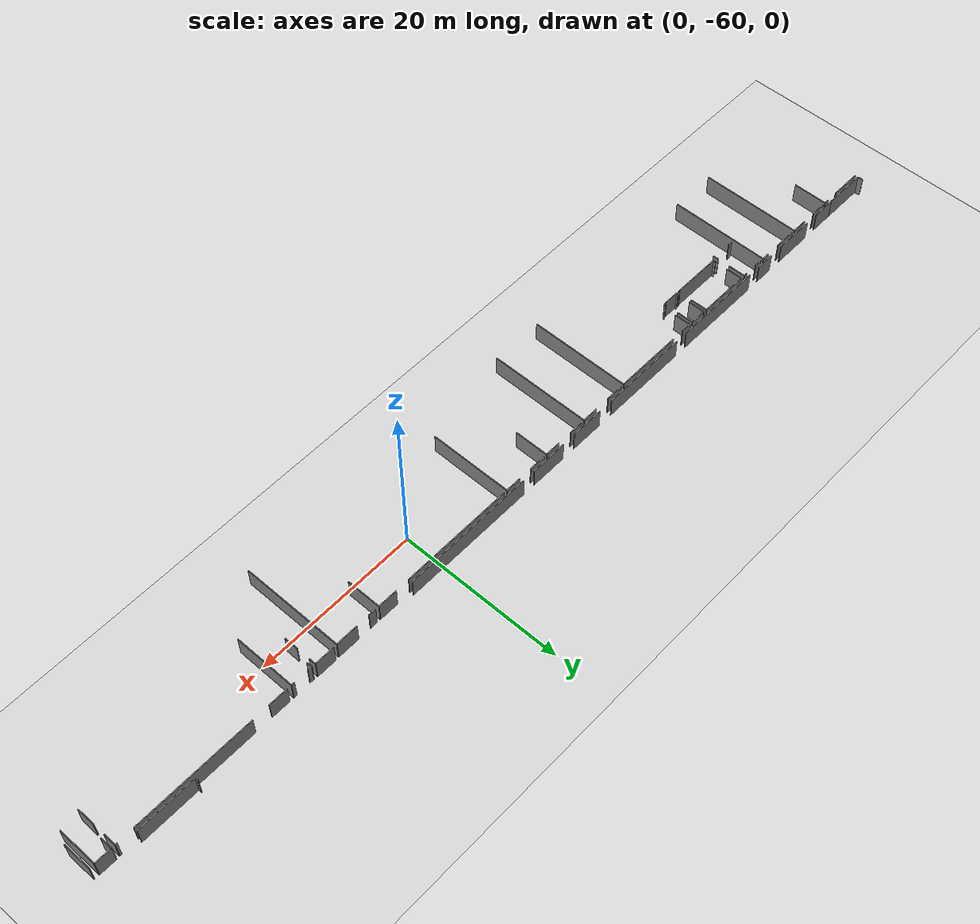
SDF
<sdf version="1.6">
 <world name="default">
  <model name="ground_plane">
   <static>1</static>
   <link name="link">
    <collision name="collision">
     <geometry><plane><normal>0 0 1</normal><size>100 100</size></plane></geometry>
     <surface><friction><ode><mu>100</mu><mu2>50</mu2></ode></friction></surface>
    </collision>
    <visual name="visual">
     <cast_shadows>0</cast_shadows>
     <geometry><plane><normal>0 0 1</normal><size>100 100</size></plane></geometry>
     <material>
      <script><uri>file://media/materials/scripts/gazebo.material</uri><name>Gazebo/Grey</name></script>
     </material>
    </visual>
   </link>
  </model>
  <model name="50036893">
   <static>1</static>
   <link name="Wall_6">
    <collision name="Wall_6_Collision">
     <geometry><box><size>3.85703506914 0.1 2.5</size></box></geometry>
     <pose>1.92851753457 0 1.25 0 0 0</pose>
    </collision>
    <visual name="Wall_6_Visual">
     <pose>1.92851753457 0 1.25 0 0 0</pose>
     <geometry><box><size>3.85703506914 0.1 2.5</size></box></geometry>
     <material>
      <script><uri>file://media/materials/scripts/gazebo.material</uri><name>Gazebo/Grey</name></script>
      <ambient>1 1 1 1</ambient>
     </material>
    </visual>
    <pose>4.74013581288 -123.289689761 0 0 0 0.0</pose>
   </link>
   <link name="Wall_7">
    <collision name="Wall_7_Collision">
     <geometry><box><size>0.567345308369 0.1 2.5</size></box></geometry>
     <pose>0.283672654184 0 1.25 0 0 0</pose>
    </collision>
    <visual name="Wall_7_Visual">
     <pose>0.283672654184 0 1.25 0 0 0</pose>
     <geometry><box><size>0.567345308369 0.1 2.5</size></box></geometry>
     <material>
      <script><uri>file://media/materials/scripts/gazebo.material</uri><name>Gazebo/Grey</name></script>
      <ambient>1 1 1 1</ambient>
     </material>
    </visual>
    <pose>10.0057698282 -123.289689761 0 0 0 0.0</pose>
   </link>
   <link name="Wall_8">
    <collision name="Wall_8_Collision">
     <geometry><box><size>4.20931161511 0.1 2.5</size></box></geometry>
     <pose>2.10465580755 0 1.25 0 0 0</pose>
    </collision>
    <visual name="Wall_8_Visual">
     <pose>2.10465580755 0 1.25 0 0 0</pose>
     <geometry><box><size>4.20931161511 0.1 2.5</size></box></geometry>
     <material>
      <script><uri>file://media/materials/scripts/gazebo.material</uri><name>Gazebo/Grey</name></script>
      <ambient>1 1 1 1</ambient>
     </material>
    </visual>
    <pose>10.5731151366 -123.289689761 0 0 0 -1.57079632679</pose>
   </link>
   <link name="Wall_15">
    <collision name="Wall_15_Collision">
     <geometry><box><size>1.75960739806 0.1 2.5</size></box></geometry>
     <pose>0.879803699031 0 1.25 0 0 0</pose>
    </collision>
    <visual name="Wall_15_Visual">
     <pose>0.879803699031 0 1.25 0 0 0</pose>
     <geometry><box><size>1.75960739806 0.1 2.5</size></box></geometry>
     <material>
      <script><uri>file://media/materials/scripts/gazebo.material</uri><name>Gazebo/Grey</name></script>
      <ambient>1 1 1 1</ambient>
     </material>
    </visual>
    <pose>11.0207523602 -123.288421667 0 0 0 0.0</pose>
   </link>
   <link name="Wall_16">
    <collision name="Wall_16_Collision">
     <geometry><box><size>1.86384473456 0.1 2.5</size></box></geometry>
     <pose>0.931922367278 0 1.25 0 0 0</pose>
    </collision>
    <visual name="Wall_16_Visual">
     <pose>0.931922367278 0 1.25 0 0 0</pose>
     <geometry><box><size>1.86384473456 0.1 2.5</size></box></geometry>
     <material>
      <script><uri>file://media/materials/scripts/gazebo.material</uri><name>Gazebo/Grey</name></script>
      <ambient>1 1 1 1</ambient>
     </material>
    </visual>
    <pose>14.4798594952 -123.288421667 0 0 0 0.0</pose>
   </link>
   <link name="Wall_17">
    <collision name="Wall_17_Collision">
     <geometry><box><size>12.3864897253 0.1 2.5</size></box></geometry>
     <pose>6.19324486263 0 1.25 0 0 0</pose>
    </collision>
    <visual name="Wall_17_Visual">
     <pose>6.19324486263 0 1.25 0 0 0</pose>
     <geometry><box><size>12.3864897253 0.1 2.5</size></box></geometry>
     <material>
      <script><uri>file://media/materials/scripts/gazebo.material</uri><name>Gazebo/Grey</name></script>
      <ambient>1 1 1 1</ambient>
     </material>
    </visual>
    <pose>16.3437042297 -123.288421667 0 0 0 -1.57079632679</pose>
   </link>
   <link name="Wall_20">
    <collision name="Wall_20_Collision">
     <geometry><box><size>2.57321658413 0.1 2.5</size></box></geometry>
     <pose>1.28660829207 0 1.25 0 0 0</pose>
    </collision>
    <visual name="Wall_20_Visual">
     <pose>1.28660829207 0 1.25 0 0 0</pose>
     <geometry><box><size>2.57321658413 0.1 2.5</size></box></geometry>
     <material>
      <script><uri>file://media/materials/scripts/gazebo.material</uri><name>Gazebo/Grey</name></script>
      <ambient>1 1 1 1</ambient>
     </material>
    </visual>
    <pose>16.7806894628 -123.314798024 0 0 0 0.0</pose>
   </link>
   <link name="Wall_21">
    <collision name="Wall_21_Collision">
     <geometry><box><size>0.920636329628 0.1 2.5</size></box></geometry>
     <pose>0.460318164814 0 1.25 0 0 0</pose>
    </collision>
    <visual name="Wall_21_Visual">
     <pose>0.460318164814 0 1.25 0 0 0</pose>
     <geometry><box><size>0.920636329628 0.1 2.5</size></box></geometry>
     <material>
      <script><uri>file://media/materials/scripts/gazebo.material</uri><name>Gazebo/Grey</name></script>
      <ambient>1 1 1 1</ambient>
     </material>
    </visual>
    <pose>21.1348174261 -123.314798024 0 0 0 0.0</pose>
   </link>
   <link name="Wall_22">
    <collision name="Wall_22_Collision">
     <geometry><box><size>12.3400774806 0.1 2.5</size></box></geometry>
     <pose>6.17003874028 0 1.25 0 0 0</pose>
    </collision>
    <visual name="Wall_22_Visual">
     <pose>6.17003874028 0 1.25 0 0 0</pose>
     <geometry><box><size>12.3400774806 0.1 2.5</size></box></geometry>
     <material>
      <script><uri>file://media/materials/scripts/gazebo.material</uri><name>Gazebo/Grey</name></script>
      <ambient>1 1 1 1</ambient>
     </material>
    </visual>
    <pose>22.0554537558 -123.314798024 0 0 0 -1.57079632679</pose>
   </link>
   <link name="Wall_27">
    <collision name="Wall_27_Collision">
     <geometry><box><size>0.550352847188 0.1 2.5</size></box></geometry>
     <pose>0.275176423594 0 1.25 0 0 0</pose>
    </collision>
    <visual name="Wall_27_Visual">
     <pose>0.275176423594 0 1.25 0 0 0</pose>
     <geometry><box><size>0.550352847188 0.1 2.5</size></box></geometry>
     <material>
      <script><uri>file://media/materials/scripts/gazebo.material</uri><name>Gazebo/Grey</name></script>
      <ambient>1 1 1 1</ambient>
     </material>
    </visual>
    <pose>23.0090605325 -127.451574656 0 0 0 3.14159265359</pose>
   </link>
   <link name="Wall_29">
    <collision name="Wall_29_Collision">
     <geometry><box><size>0.935853459044 0.1 2.5</size></box></geometry>
     <pose>0.467926729522 0 1.25 0 0 0</pose>
    </collision>
    <visual name="Wall_29_Visual">
     <pose>0.467926729522 0 1.25 0 0 0</pose>
     <geometry><box><size>0.935853459044 0.1 2.5</size></box></geometry>
     <material>
      <script><uri>file://media/materials/scripts/gazebo.material</uri><name>Gazebo/Grey</name></script>
      <ambient>1 1 1 1</ambient>
     </material>
    </visual>
    <pose>22.4587076853 -123.343456951 0 0 0 0.0</pose>
   </link>
   <link name="Wall_30">
    <collision name="Wall_30_Collision">
     <geometry><box><size>0.471731011876 0.1 2.5</size></box></geometry>
     <pose>0.235865505938 0 1.25 0 0 0</pose>
    </collision>
    <visual name="Wall_30_Visual">
     <pose>0.235865505938 0 1.25 0 0 0</pose>
     <geometry><box><size>0.471731011876 0.1 2.5</size></box></geometry>
     <material>
      <script><uri>file://media/materials/scripts/gazebo.material</uri><name>Gazebo/Grey</name></script>
      <ambient>1 1 1 1</ambient>
     </material>
    </visual>
    <pose>24.9847511682 -123.343456951 0 0 0 0.0</pose>
   </link>
   <link name="Wall_31">
    <collision name="Wall_31_Collision">
     <geometry><box><size>2.09235529461 0.1 2.5</size></box></geometry>
     <pose>1.0461776473 0 1.25 0 0 0</pose>
    </collision>
    <visual name="Wall_31_Visual">
     <pose>1.0461776473 0 1.25 0 0 0</pose>
     <geometry><box><size>2.09235529461 0.1 2.5</size></box></geometry>
     <material>
      <script><uri>file://media/materials/scripts/gazebo.material</uri><name>Gazebo/Grey</name></script>
      <ambient>1 1 1 1</ambient>
     </material>
    </visual>
    <pose>25.4564821801 -123.343456951 0 0 0 -1.57079632679</pose>
   </link>
   <link name="Wall_32">
    <collision name="Wall_32_Collision">
     <geometry><box><size>0.701763284871 0.1 2.5</size></box></geometry>
     <pose>0.350881642436 0 1.25 0 0 0</pose>
    </collision>
    <visual name="Wall_32_Visual">
     <pose>0.350881642436 0 1.25 0 0 0</pose>
     <geometry><box><size>0.701763284871 0.1 2.5</size></box></geometry>
     <material>
      <script><uri>file://media/materials/scripts/gazebo.material</uri><name>Gazebo/Grey</name></script>
      <ambient>1 1 1 1</ambient>
     </material>
    </visual>
    <pose>25.4564821801 -126.950677479 0 0 0 -1.57079632679</pose>
   </link>
   <link name="Wall_36">
    <collision name="Wall_36_Collision">
     <geometry><box><size>6.15025647204 0.1 2.5</size></box></geometry>
     <pose>3.07512823602 0 1.25 0 0 0</pose>
    </collision>
    <visual name="Wall_36_Visual">
     <pose>3.07512823602 0 1.25 0 0 0</pose>
     <geometry><box><size>6.15025647204 0.1 2.5</size></box></geometry>
     <material>
      <script><uri>file://media/materials/scripts/gazebo.material</uri><name>Gazebo/Grey</name></script>
      <ambient>1 1 1 1</ambient>
     </material>
    </visual>
    <pose>25.961183639 -123.352840848 0 0 0 0.0</pose>
   </link>
   <link name="Wall_37">
    <collision name="Wall_37_Collision">
     <geometry><box><size>2.10655794873 0.1 2.5</size></box></geometry>
     <pose>1.05327897437 0 1.25 0 0 0</pose>
    </collision>
    <visual name="Wall_37_Visual">
     <pose>1.05327897437 0 1.25 0 0 0</pose>
     <geometry><box><size>2.10655794873 0.1 2.5</size></box></geometry>
     <material>
      <script><uri>file://media/materials/scripts/gazebo.material</uri><name>Gazebo/Grey</name></script>
      <ambient>1 1 1 1</ambient>
     </material>
    </visual>
    <pose>32.1114401111 -123.352840848 0 0 0 -1.57079632679</pose>
   </link>
   <link name="Wall_38">
    <collision name="Wall_38_Collision">
     <geometry><box><size>0.169163755334 0.1 2.5</size></box></geometry>
     <pose>0.0845818776669 0 1.25 0 0 0</pose>
    </collision>
    <visual name="Wall_38_Visual">
     <pose>0.0845818776669 0 1.25 0 0 0</pose>
     <geometry><box><size>0.169163755334 0.1 2.5</size></box></geometry>
     <material>
      <script><uri>file://media/materials/scripts/gazebo.material</uri><name>Gazebo/Grey</name></script>
      <ambient>1 1 1 1</ambient>
     </material>
    </visual>
    <pose>32.1114401111 -127.080276698 0 0 0 -1.57079632679</pose>
   </link>
   <link name="Wall_39">
    <collision name="Wall_39_Collision">
     <geometry><box><size>6.14011171909 0.1 2.5</size></box></geometry>
     <pose>3.07005585955 0 1.25 0 0 0</pose>
    </collision>
    <visual name="Wall_39_Visual">
     <pose>3.07005585955 0 1.25 0 0 0</pose>
     <geometry><box><size>6.14011171909 0.1 2.5</size></box></geometry>
     <material>
      <script><uri>file://media/materials/scripts/gazebo.material</uri><name>Gazebo/Grey</name></script>
      <ambient>1 1 1 1</ambient>
     </material>
    </visual>
    <pose>32.1114401111 -127.249440453 0 0 0 3.14159265359</pose>
   </link>
   <link name="Wall_40">
    <collision name="Wall_40_Collision">
     <geometry><box><size>0.302060018895 0.1 2.5</size></box></geometry>
     <pose>0.151030009447 0 1.25 0 0 0</pose>
    </collision>
    <visual name="Wall_40_Visual">
     <pose>0.151030009447 0 1.25 0 0 0</pose>
     <geometry><box><size>0.302060018895 0.1 2.5</size></box></geometry>
     <material>
      <script><uri>file://media/materials/scripts/gazebo.material</uri><name>Gazebo/Grey</name></script>
      <ambient>1 1 1 1</ambient>
     </material>
    </visual>
    <pose>25.971328392 -127.249440453 0 0 0 1.57079632679</pose>
   </link>
   <link name="Wall_41">
    <collision name="Wall_41_Collision">
     <geometry><box><size>1.99930292449 0.1 2.5</size></box></geometry>
     <pose>0.999651462246 0 1.25 0 0 0</pose>
    </collision>
    <visual name="Wall_41_Visual">
     <pose>0.999651462246 0 1.25 0 0 0</pose>
     <geometry><box><size>1.99930292449 0.1 2.5</size></box></geometry>
     <material>
      <script><uri>file://media/materials/scripts/gazebo.material</uri><name>Gazebo/Grey</name></script>
      <ambient>1 1 1 1</ambient>
     </material>
    </visual>
    <pose>25.971328392 -125.352118034 0 0 0 1.57587049357</pose>
   </link>
   <link name="Wall_42">
    <collision name="Wall_42_Collision">
     <geometry><box><size>1.96300969458 0.1 2.5</size></box></geometry>
     <pose>0.98150484729 0 1.25 0 0 0</pose>
    </collision>
    <visual name="Wall_42_Visual">
     <pose>0.98150484729 0 1.25 0 0 0</pose>
     <geometry><box><size>1.96300969458 0.1 2.5</size></box></geometry>
     <material>
      <script><uri>file://media/materials/scripts/gazebo.material</uri><name>Gazebo/Grey</name></script>
      <ambient>1 1 1 1</ambient>
     </material>
    </visual>
    <pose>32.5603454288 -123.37617378 0 0 0 0.0</pose>
   </link>
   <link name="Wall_43">
    <collision name="Wall_43_Collision">
     <geometry><box><size>2.0396025793 0.1 2.5</size></box></geometry>
     <pose>1.01980128965 0 1.25 0 0 0</pose>
    </collision>
    <visual name="Wall_43_Visual">
     <pose>1.01980128965 0 1.25 0 0 0</pose>
     <geometry><box><size>2.0396025793 0.1 2.5</size></box></geometry>
     <material>
      <script><uri>file://media/materials/scripts/gazebo.material</uri><name>Gazebo/Grey</name></script>
      <ambient>1 1 1 1</ambient>
     </material>
    </visual>
    <pose>34.5233551234 -123.37617378 0 0 0 -1.57079632679</pose>
   </link>
   <link name="Wall_44">
    <collision name="Wall_44_Collision">
     <geometry><box><size>0.186409835338 0.1 2.5</size></box></geometry>
     <pose>0.093204917669 0 1.25 0 0 0</pose>
    </collision>
    <visual name="Wall_44_Visual">
     <pose>0.093204917669 0 1.25 0 0 0</pose>
     <geometry><box><size>0.186409835338 0.1 2.5</size></box></geometry>
     <material>
      <script><uri>file://media/materials/scripts/gazebo.material</uri><name>Gazebo/Grey</name></script>
      <ambient>1 1 1 1</ambient>
     </material>
    </visual>
    <pose>34.5233551234 -127.071400039 0 0 0 -1.57079632679</pose>
   </link>
   <link name="Wall_45">
    <collision name="Wall_45_Collision">
     <geometry><box><size>2.03148677695 0.1 2.5</size></box></geometry>
     <pose>1.01574338847 0 1.25 0 0 0</pose>
    </collision>
    <visual name="Wall_45_Visual">
     <pose>1.01574338847 0 1.25 0 0 0</pose>
     <geometry><box><size>2.03148677695 0.1 2.5</size></box></geometry>
     <material>
      <script><uri>file://media/materials/scripts/gazebo.material</uri><name>Gazebo/Grey</name></script>
      <ambient>1 1 1 1</ambient>
     </material>
    </visual>
    <pose>34.5233551234 -127.257809875 0 0 0 3.14159265359</pose>
   </link>
   <link name="Wall_46">
    <collision name="Wall_46_Collision">
     <geometry><box><size>0.250321778882 0.1 2.5</size></box></geometry>
     <pose>0.125160889441 0 1.25 0 0 0</pose>
    </collision>
    <visual name="Wall_46_Visual">
     <pose>0.125160889441 0 1.25 0 0 0</pose>
     <geometry><box><size>0.250321778882 0.1 2.5</size></box></geometry>
     <material>
      <script><uri>file://media/materials/scripts/gazebo.material</uri><name>Gazebo/Grey</name></script>
      <ambient>1 1 1 1</ambient>
     </material>
    </visual>
    <pose>32.4918683465 -127.257809875 0 0 0 1.57079632679</pose>
   </link>
   <link name="Wall_47">
    <collision name="Wall_47_Collision">
     <geometry><box><size>2.04036343577 0.1 2.5</size></box></geometry>
     <pose>1.02018171789 0 1.25 0 0 0</pose>
    </collision>
    <visual name="Wall_47_Visual">
     <pose>1.02018171789 0 1.25 0 0 0</pose>
     <geometry><box><size>2.04036343577 0.1 2.5</size></box></geometry>
     <material>
      <script><uri>file://media/materials/scripts/gazebo.material</uri><name>Gazebo/Grey</name></script>
      <ambient>1 1 1 1</ambient>
     </material>
    </visual>
    <pose>32.4918683465 -125.412225695 0 0 0 1.57079632679</pose>
   </link>
   <link name="Wall_48">
    <collision name="Wall_48_Collision">
     <geometry><box><size>0.0686126811493 0.1 2.5</size></box></geometry>
     <pose>0.0343063405747 0 1.25 0 0 0</pose>
    </collision>
    <visual name="Wall_48_Visual">
     <pose>0.0343063405747 0 1.25 0 0 0</pose>
     <geometry><box><size>0.0686126811493 0.1 2.5</size></box></geometry>
     <material>
      <script><uri>file://media/materials/scripts/gazebo.material</uri><name>Gazebo/Grey</name></script>
      <ambient>1 1 1 1</ambient>
     </material>
    </visual>
    <pose>32.4918683465 -123.37186226 0 0 0 -0.0628799582224</pose>
   </link>
   <link name="Wall_54">
    <collision name="Wall_54_Collision">
     <geometry><box><size>2.01170450871 0.1 2.5</size></box></geometry>
     <pose>1.00585225435 0 1.25 0 0 0</pose>
    </collision>
    <visual name="Wall_54_Visual">
     <pose>1.00585225435 0 1.25 0 0 0</pose>
     <geometry><box><size>2.01170450871 0.1 2.5</size></box></geometry>
     <material>
      <script><uri>file://media/materials/scripts/gazebo.material</uri><name>Gazebo/Grey</name></script>
      <ambient>1 1 1 1</ambient>
     </material>
    </visual>
    <pose>34.9392899941 -125.402841799 0 0 0 1.57079632679</pose>
   </link>
   <link name="Wall_55">
    <collision name="Wall_55_Collision">
     <geometry><box><size>1.24273223559 0.1 2.5</size></box></geometry>
     <pose>0.621366117793 0 1.25 0 0 0</pose>
    </collision>
    <visual name="Wall_55_Visual">
     <pose>0.621366117793 0 1.25 0 0 0</pose>
     <geometry><box><size>1.24273223559 0.1 2.5</size></box></geometry>
     <material>
      <script><uri>file://media/materials/scripts/gazebo.material</uri><name>Gazebo/Grey</name></script>
      <ambient>1 1 1 1</ambient>
     </material>
    </visual>
    <pose>34.9392899941 -123.39113729 0 0 0 0.0</pose>
   </link>
   <link name="Wall_56">
    <collision name="Wall_56_Collision">
     <geometry><box><size>8.28319077842 0.1 2.5</size></box></geometry>
     <pose>4.14159538921 0 1.25 0 0 0</pose>
    </collision>
    <visual name="Wall_56_Visual">
     <pose>4.14159538921 0 1.25 0 0 0</pose>
     <geometry><box><size>8.28319077842 0.1 2.5</size></box></geometry>
     <material>
      <script><uri>file://media/materials/scripts/gazebo.material</uri><name>Gazebo/Grey</name></script>
      <ambient>1 1 1 1</ambient>
     </material>
    </visual>
    <pose>37.7468503712 -123.39113729 0 0 0 0.0</pose>
   </link>
   <link name="Wall_57">
    <collision name="Wall_57_Collision">
     <geometry><box><size>12.3185198805 0.1 2.5</size></box></geometry>
     <pose>6.15925994027 0 1.25 0 0 0</pose>
    </collision>
    <visual name="Wall_57_Visual">
     <pose>6.15925994027 0 1.25 0 0 0</pose>
     <geometry><box><size>12.3185198805 0.1 2.5</size></box></geometry>
     <material>
      <script><uri>file://media/materials/scripts/gazebo.material</uri><name>Gazebo/Grey</name></script>
      <ambient>1 1 1 1</ambient>
     </material>
    </visual>
    <pose>46.0300411497 -123.39113729 0 0 0 -1.57079632679</pose>
   </link>
   <link name="Wall_65">
    <collision name="Wall_65_Collision">
     <geometry><box><size>2.14307905933 0.1 2.5</size></box></geometry>
     <pose>1.07153952966 0 1.25 0 0 0</pose>
    </collision>
    <visual name="Wall_65_Visual">
     <pose>1.07153952966 0 1.25 0 0 0</pose>
     <geometry><box><size>2.14307905933 0.1 2.5</size></box></geometry>
     <material>
      <script><uri>file://media/materials/scripts/gazebo.material</uri><name>Gazebo/Grey</name></script>
      <ambient>1 1 1 1</ambient>
     </material>
    </visual>
    <pose>46.463729338 -123.381499775 0 0 0 0.0</pose>
   </link>
   <link name="Wall_66">
    <collision name="Wall_66_Collision">
     <geometry><box><size>1.93257543575 0.1 2.5</size></box></geometry>
     <pose>0.966287717874 0 1.25 0 0 0</pose>
    </collision>
    <visual name="Wall_66_Visual">
     <pose>0.966287717874 0 1.25 0 0 0</pose>
     <geometry><box><size>1.93257543575 0.1 2.5</size></box></geometry>
     <material>
      <script><uri>file://media/materials/scripts/gazebo.material</uri><name>Gazebo/Grey</name></script>
      <ambient>1 1 1 1</ambient>
     </material>
    </visual>
    <pose>50.4911962566 -123.381499775 0 0 0 0.0</pose>
   </link>
   <link name="Wall_67">
    <collision name="Wall_67_Collision">
     <geometry><box><size>12.3750768782 0.1 2.5</size></box></geometry>
     <pose>6.1875384391 0 1.25 0 0 0</pose>
    </collision>
    <visual name="Wall_67_Visual">
     <pose>6.1875384391 0 1.25 0 0 0</pose>
     <geometry><box><size>12.3750768782 0.1 2.5</size></box></geometry>
     <material>
      <script><uri>file://media/materials/scripts/gazebo.material</uri><name>Gazebo/Grey</name></script>
      <ambient>1 1 1 1</ambient>
     </material>
    </visual>
    <pose>52.4237716923 -123.381499775 0 0 0 -1.57079632679</pose>
   </link>
   <link name="Wall_70">
    <collision name="Wall_70_Collision">
     <geometry><box><size>1.7169994357 0.1 2.5</size></box></geometry>
     <pose>0.858499717849 0 1.25 0 0 0</pose>
    </collision>
    <visual name="Wall_70_Visual">
     <pose>0.858499717849 0 1.25 0 0 0</pose>
     <geometry><box><size>1.7169994357 0.1 2.5</size></box></geometry>
     <material>
      <script><uri>file://media/materials/scripts/gazebo.material</uri><name>Gazebo/Grey</name></script>
      <ambient>1 1 1 1</ambient>
     </material>
    </visual>
    <pose>52.8777493866 -123.366029027 0 0 0 0.0</pose>
   </link>
   <link name="Wall_71">
    <collision name="Wall_71_Collision">
     <geometry><box><size>1.92496687104 0.1 2.5</size></box></geometry>
     <pose>0.962483435521 0 1.25 0 0 0</pose>
    </collision>
    <visual name="Wall_71_Visual">
     <pose>0.962483435521 0 1.25 0 0 0</pose>
     <geometry><box><size>1.92496687104 0.1 2.5</size></box></geometry>
     <material>
      <script><uri>file://media/materials/scripts/gazebo.material</uri><name>Gazebo/Grey</name></script>
      <ambient>1 1 1 1</ambient>
     </material>
    </visual>
    <pose>56.4055872227 -123.366029027 0 0 0 0.0</pose>
   </link>
   <link name="Wall_72">
    <collision name="Wall_72_Collision">
     <geometry><box><size>4.18192078216 0.1 2.5</size></box></geometry>
     <pose>2.09096039108 0 1.25 0 0 0</pose>
    </collision>
    <visual name="Wall_72_Visual">
     <pose>2.09096039108 0 1.25 0 0 0</pose>
     <geometry><box><size>4.18192078216 0.1 2.5</size></box></geometry>
     <material>
      <script><uri>file://media/materials/scripts/gazebo.material</uri><name>Gazebo/Grey</name></script>
      <ambient>1 1 1 1</ambient>
     </material>
    </visual>
    <pose>58.3305540937 -123.366029027 0 0 0 -1.57079632679</pose>
   </link>
   <link name="Wall_83">
    <collision name="Wall_83_Collision">
     <geometry><box><size>2.07713816519 0.1 2.5</size></box></geometry>
     <pose>1.0385690826 0 1.25 0 0 0</pose>
    </collision>
    <visual name="Wall_83_Visual">
     <pose>1.0385690826 0 1.25 0 0 0</pose>
     <geometry><box><size>2.07713816519 0.1 2.5</size></box></geometry>
     <material>
      <script><uri>file://media/materials/scripts/gazebo.material</uri><name>Gazebo/Grey</name></script>
      <ambient>1 1 1 1</ambient>
     </material>
    </visual>
    <pose>58.7338080232 -123.362478363 0 0 0 0.0</pose>
   </link>
   <link name="Wall_84">
    <collision name="Wall_84_Collision">
     <geometry><box><size>1.9503287534 0.1 2.5</size></box></geometry>
     <pose>0.9751643767 0 1.25 0 0 0</pose>
    </collision>
    <visual name="Wall_84_Visual">
     <pose>0.9751643767 0 1.25 0 0 0</pose>
     <geometry><box><size>1.9503287534 0.1 2.5</size></box></geometry>
     <material>
      <script><uri>file://media/materials/scripts/gazebo.material</uri><name>Gazebo/Grey</name></script>
      <ambient>1 1 1 1</ambient>
     </material>
    </visual>
    <pose>62.4290342829 -123.362478363 0 0 0 0.0</pose>
   </link>
   <link name="Wall_85">
    <collision name="Wall_85_Collision">
     <geometry><box><size>10.0745005294 0.1 2.5</size></box></geometry>
     <pose>5.03725026471 0 1.25 0 0 0</pose>
    </collision>
    <visual name="Wall_85_Visual">
     <pose>5.03725026471 0 1.25 0 0 0</pose>
     <geometry><box><size>10.0745005294 0.1 2.5</size></box></geometry>
     <material>
      <script><uri>file://media/materials/scripts/gazebo.material</uri><name>Gazebo/Grey</name></script>
      <ambient>1 1 1 1</ambient>
     </material>
    </visual>
    <pose>64.3793630363 -123.362478363 0 0 0 -1.57079632679</pose>
   </link>
   <link name="Wall_90">
    <collision name="Wall_90_Collision">
     <geometry><box><size>13.8830944033 0.1 2.5</size></box></geometry>
     <pose>6.94154720163 0 1.25 0 0 0</pose>
    </collision>
    <visual name="Wall_90_Visual">
     <pose>6.94154720163 0 1.25 0 0 0</pose>
     <geometry><box><size>13.8830944033 0.1 2.5</size></box></geometry>
     <material>
      <script><uri>file://media/materials/scripts/gazebo.material</uri><name>Gazebo/Grey</name></script>
      <ambient>1 1 1 1</ambient>
     </material>
    </visual>
    <pose>64.8181236011 -123.359688556 0 0 0 0.0</pose>
   </link>
   <link name="Wall_91">
    <collision name="Wall_91_Collision">
     <geometry><box><size>2.38401694174 0.1 2.5</size></box></geometry>
     <pose>1.19200847087 0 1.25 0 0 0</pose>
    </collision>
    <visual name="Wall_91_Visual">
     <pose>1.19200847087 0 1.25 0 0 0</pose>
     <geometry><box><size>2.38401694174 0.1 2.5</size></box></geometry>
     <material>
      <script><uri>file://media/materials/scripts/gazebo.material</uri><name>Gazebo/Grey</name></script>
      <ambient>1 1 1 1</ambient>
     </material>
    </visual>
    <pose>80.4410431342 -123.359688556 0 0 0 0.0</pose>
   </link>
   <link name="Wall_92">
    <collision name="Wall_92_Collision">
     <geometry><box><size>4.19409448569 0.1 2.5</size></box></geometry>
     <pose>2.09704724285 0 1.25 0 0 0</pose>
    </collision>
    <visual name="Wall_92_Visual">
     <pose>2.09704724285 0 1.25 0 0 0</pose>
     <geometry><box><size>4.19409448569 0.1 2.5</size></box></geometry>
     <material>
      <script><uri>file://media/materials/scripts/gazebo.material</uri><name>Gazebo/Grey</name></script>
      <ambient>1 1 1 1</ambient>
     </material>
    </visual>
    <pose>82.825060076 -123.359688556 0 0 0 -1.57079632679</pose>
   </link>
   <link name="Wall_99">
    <collision name="Wall_99_Collision">
     <geometry><box><size>0.907955388449 0.1 2.5</size></box></geometry>
     <pose>0.453977694224 0 1.25 0 0 0</pose>
    </collision>
    <visual name="Wall_99_Visual">
     <pose>0.453977694224 0 1.25 0 0 0</pose>
     <geometry><box><size>0.907955388449 0.1 2.5</size></box></geometry>
     <material>
      <script><uri>file://media/materials/scripts/gazebo.material</uri><name>Gazebo/Grey</name></script>
      <ambient>1 1 1 1</ambient>
     </material>
    </visual>
    <pose>83.2917187114 -123.385050438 0 0 0 0.0</pose>
   </link>
   <link name="Wall_100">
    <collision name="Wall_100_Collision">
     <geometry><box><size>2.72640235358 0.1 2.5</size></box></geometry>
     <pose>1.36320117679 0 1.25 0 0 0</pose>
    </collision>
    <visual name="Wall_100_Visual">
     <pose>1.36320117679 0 1.25 0 0 0</pose>
     <geometry><box><size>2.72640235358 0.1 2.5</size></box></geometry>
     <material>
      <script><uri>file://media/materials/scripts/gazebo.material</uri><name>Gazebo/Grey</name></script>
      <ambient>1 1 1 1</ambient>
     </material>
    </visual>
    <pose>85.8126898178 -123.385050438 0 0 0 0.0</pose>
   </link>
   <link name="Wall_101">
    <collision name="Wall_101_Collision">
     <geometry><box><size>12.3765985911 0.1 2.5</size></box></geometry>
     <pose>6.18829929557 0 1.25 0 0 0</pose>
    </collision>
    <visual name="Wall_101_Visual">
     <pose>6.18829929557 0 1.25 0 0 0</pose>
     <geometry><box><size>12.3765985911 0.1 2.5</size></box></geometry>
     <material>
      <script><uri>file://media/materials/scripts/gazebo.material</uri><name>Gazebo/Grey</name></script>
      <ambient>1 1 1 1</ambient>
     </material>
    </visual>
    <pose>88.5390921714 -123.385050438 0 0 0 -1.57079632679</pose>
   </link>
   <link name="Wall_103">
    <collision name="Wall_103_Collision">
     <geometry><box><size>0.486948141291 0.1 2.5</size></box></geometry>
     <pose>0.243474070646 0 1.25 0 0 0</pose>
    </collision>
    <visual name="Wall_103_Visual">
     <pose>0.243474070646 0 1.25 0 0 0</pose>
     <geometry><box><size>0.486948141291 0.1 2.5</size></box></geometry>
     <material>
      <script><uri>file://media/materials/scripts/gazebo.material</uri><name>Gazebo/Grey</name></script>
      <ambient>1 1 1 1</ambient>
     </material>
    </visual>
    <pose>91.8919330193 -123.419542598 0 0 0 0.0</pose>
   </link>
   <link name="Wall_104">
    <collision name="Wall_104_Collision">
     <geometry><box><size>0.395645364799 0.1 2.5</size></box></geometry>
     <pose>0.1978226824 0 1.25 0 0 0</pose>
    </collision>
    <visual name="Wall_104_Visual">
     <pose>0.1978226824 0 1.25 0 0 0</pose>
     <geometry><box><size>0.395645364799 0.1 2.5</size></box></geometry>
     <material>
      <script><uri>file://media/materials/scripts/gazebo.material</uri><name>Gazebo/Grey</name></script>
      <ambient>1 1 1 1</ambient>
     </material>
    </visual>
    <pose>94.1161701021 -123.419542598 0 0 0 0.0</pose>
   </link>
   <link name="Wall_105">
    <collision name="Wall_105_Collision">
     <geometry><box><size>7.3798005288 0.1 2.5</size></box></geometry>
     <pose>3.6899002644 0 1.25 0 0 0</pose>
    </collision>
    <visual name="Wall_105_Visual">
     <pose>3.6899002644 0 1.25 0 0 0</pose>
     <geometry><box><size>7.3798005288 0.1 2.5</size></box></geometry>
     <material>
      <script><uri>file://media/materials/scripts/gazebo.material</uri><name>Gazebo/Grey</name></script>
      <ambient>1 1 1 1</ambient>
     </material>
    </visual>
    <pose>94.5118154669 -123.419542598 0 0 0 -1.57079632679</pose>
   </link>
   <link name="Wall_110">
    <collision name="Wall_110_Collision">
     <geometry><box><size>0.676908640159 0.1 2.5</size></box></geometry>
     <pose>0.33845432008 0 1.25 0 0 0</pose>
    </collision>
    <visual name="Wall_110_Visual">
     <pose>0.33845432008 0 1.25 0 0 0</pose>
     <geometry><box><size>0.676908640159 0.1 2.5</size></box></geometry>
     <material>
      <script><uri>file://media/materials/scripts/gazebo.material</uri><name>Gazebo/Grey</name></script>
      <ambient>1 1 1 1</ambient>
     </material>
    </visual>
    <pose>91.8361368781 -124.087067342 0 0 0 1.57079632679</pose>
   </link>
   <link name="Wall_111">
    <collision name="Wall_111_Collision">
     <geometry><box><size>0.056579739171 0.1 2.5</size></box></geometry>
     <pose>0.0282898695855 0 1.25 0 0 0</pose>
    </collision>
    <visual name="Wall_111_Visual">
     <pose>0.0282898695855 0 1.25 0 0 0</pose>
     <geometry><box><size>0.056579739171 0.1 2.5</size></box></geometry>
     <material>
      <script><uri>file://media/materials/scripts/gazebo.material</uri><name>Gazebo/Grey</name></script>
      <ambient>1 1 1 1</ambient>
     </material>
    </visual>
    <pose>91.8361368781 -123.410158702 0 0 0 -0.166622515699</pose>
   </link>
   <link name="Wall_113">
    <collision name="Wall_113_Collision">
     <geometry><box><size>2.42205976528 0.1 2.5</size></box></geometry>
     <pose>1.21102988264 0 1.25 0 0 0</pose>
    </collision>
    <visual name="Wall_113_Visual">
     <pose>1.21102988264 0 1.25 0 0 0</pose>
     <geometry><box><size>2.42205976528 0.1 2.5</size></box></geometry>
     <material>
      <script><uri>file://media/materials/scripts/gazebo.material</uri><name>Gazebo/Grey</name></script>
      <ambient>1 1 1 1</ambient>
     </material>
    </visual>
    <pose>88.9778527362 -123.359688556 0 0 0 0.0</pose>
   </link>
   <link name="Wall_114">
    <collision name="Wall_114_Collision">
     <geometry><box><size>0.81969603784 0.1 2.5</size></box></geometry>
     <pose>0.40984801892 0 1.25 0 0 0</pose>
    </collision>
    <visual name="Wall_114_Visual">
     <pose>0.40984801892 0 1.25 0 0 0</pose>
     <geometry><box><size>0.81969603784 0.1 2.5</size></box></geometry>
     <material>
      <script><uri>file://media/materials/scripts/gazebo.material</uri><name>Gazebo/Grey</name></script>
      <ambient>1 1 1 1</ambient>
     </material>
    </visual>
    <pose>91.3999125015 -123.359688556 0 0 0 -1.57079632679</pose>
   </link>
   <link name="Wall_115">
    <collision name="Wall_115_Collision">
     <geometry><box><size>1.68935498393 0.1 2.5</size></box></geometry>
     <pose>0.844677491963 0 1.25 0 0 0</pose>
    </collision>
    <visual name="Wall_115_Visual">
     <pose>0.844677491963 0 1.25 0 0 0</pose>
     <geometry><box><size>1.68935498393 0.1 2.5</size></box></geometry>
     <material>
      <script><uri>file://media/materials/scripts/gazebo.material</uri><name>Gazebo/Grey</name></script>
      <ambient>1 1 1 1</ambient>
     </material>
    </visual>
    <pose>91.3999125015 -125.841348745 0 0 0 -1.57079632679</pose>
   </link>
   <link name="Wall_128">
    <collision name="Wall_128_Collision">
     <geometry><box><size>2.33582936526 0.1 2.5</size></box></geometry>
     <pose>1.16791468263 0 1.25 0 0 0</pose>
    </collision>
    <visual name="Wall_128_Visual">
     <pose>1.16791468263 0 1.25 0 0 0</pose>
     <geometry><box><size>2.33582936526 0.1 2.5</size></box></geometry>
     <material>
      <script><uri>file://media/materials/scripts/gazebo.material</uri><name>Gazebo/Grey</name></script>
      <ambient>1 1 1 1</ambient>
     </material>
    </visual>
    <pose>95.049487373 -123.415991935 0 0 0 0.0</pose>
   </link>
   <link name="Wall_129">
    <collision name="Wall_129_Collision">
     <geometry><box><size>14.557720474 0.1 2.5</size></box></geometry>
     <pose>7.27886023701 0 1.25 0 0 0</pose>
    </collision>
    <visual name="Wall_129_Visual">
     <pose>7.27886023701 0 1.25 0 0 0</pose>
     <geometry><box><size>14.557720474 0.1 2.5</size></box></geometry>
     <material>
      <script><uri>file://media/materials/scripts/gazebo.material</uri><name>Gazebo/Grey</name></script>
      <ambient>1 1 1 1</ambient>
     </material>
    </visual>
    <pose>99.4827444093 -123.415991935 0 0 0 0.0</pose>
   </link>
   <link name="Wall_130">
    <collision name="Wall_130_Collision">
     <geometry><box><size>0.233329317702 0.1 2.5</size></box></geometry>
     <pose>0.116664658851 0 1.25 0 0 0</pose>
    </collision>
    <visual name="Wall_130_Visual">
     <pose>0.116664658851 0 1.25 0 0 0</pose>
     <geometry><box><size>0.233329317702 0.1 2.5</size></box></geometry>
     <material>
      <script><uri>file://media/materials/scripts/gazebo.material</uri><name>Gazebo/Grey</name></script>
      <ambient>1 1 1 1</ambient>
     </material>
    </visual>
    <pose>115.980648884 -123.415991935 0 0 0 0.0</pose>
   </link>
   <link name="Wall_131">
    <collision name="Wall_131_Collision">
     <geometry><box><size>1.49482934623 0.1 2.5</size></box></geometry>
     <pose>0.747414673117 0 1.25 0 0 0</pose>
    </collision>
    <visual name="Wall_131_Visual">
     <pose>0.747414673117 0 1.25 0 0 0</pose>
     <geometry><box><size>1.49482934623 0.1 2.5</size></box></geometry>
     <material>
      <script><uri>file://media/materials/scripts/gazebo.material</uri><name>Gazebo/Grey</name></script>
      <ambient>1 1 1 1</ambient>
     </material>
    </visual>
    <pose>116.213978201 -123.415991935 0 0 0 -1.57079632679</pose>
   </link>
   <link name="Wall_132">
    <collision name="Wall_132_Collision">
     <geometry><box><size>2.18188273934 0.1 2.5</size></box></geometry>
     <pose>1.09094136967 0 1.25 0 0 0</pose>
    </collision>
    <visual name="Wall_132_Visual">
     <pose>1.09094136967 0 1.25 0 0 0</pose>
     <geometry><box><size>2.18188273934 0.1 2.5</size></box></geometry>
     <material>
      <script><uri>file://media/materials/scripts/gazebo.material</uri><name>Gazebo/Grey</name></script>
      <ambient>1 1 1 1</ambient>
     </material>
    </visual>
    <pose>116.213978201 -126.369636754 0 0 0 -1.57079632679</pose>
   </link>
   <link name="Wall_177">
    <collision name="Wall_177_Collision">
     <geometry><box><size>16.3051541685 0.1 2.5</size></box></geometry>
     <pose>8.15257708427 0 1.25 0 0 0</pose>
    </collision>
    <visual name="Wall_177_Visual">
     <pose>8.15257708427 0 1.25 0 0 0</pose>
     <geometry><box><size>16.3051541685 0.1 2.5</size></box></geometry>
     <material>
      <script><uri>file://media/materials/scripts/gazebo.material</uri><name>Gazebo/Grey</name></script>
      <ambient>1 1 1 1</ambient>
     </material>
    </visual>
    <pose>78.6657113691 -122.914333902 0 0 0 3.14159265359</pose>
   </link>
   <link name="Wall_178">
    <collision name="Wall_178_Collision">
     <geometry><box><size>4.53470456577 0.1 2.5</size></box></geometry>
     <pose>2.26735228289 0 1.25 0 0 0</pose>
    </collision>
    <visual name="Wall_178_Visual">
     <pose>2.26735228289 0 1.25 0 0 0</pose>
     <geometry><box><size>4.53470456577 0.1 2.5</size></box></geometry>
     <material>
      <script><uri>file://media/materials/scripts/gazebo.material</uri><name>Gazebo/Grey</name></script>
      <ambient>1 1 1 1</ambient>
     </material>
    </visual>
    <pose>60.7805119296 -122.914333902 0 0 0 3.14159265359</pose>
   </link>
   <link name="Wall_179">
    <collision name="Wall_179_Collision">
     <geometry><box><size>4.0705821186 0.1 2.5</size></box></geometry>
     <pose>2.0352910593 0 1.25 0 0 0</pose>
    </collision>
    <visual name="Wall_179_Visual">
     <pose>2.0352910593 0 1.25 0 0 0</pose>
     <geometry><box><size>4.0705821186 0.1 2.5</size></box></geometry>
     <material>
      <script><uri>file://media/materials/scripts/gazebo.material</uri><name>Gazebo/Grey</name></script>
      <ambient>1 1 1 1</ambient>
     </material>
    </visual>
    <pose>54.5161269869 -122.914333902 0 0 0 3.14159265359</pose>
   </link>
   <link name="Wall_180">
    <collision name="Wall_180_Collision">
     <geometry><box><size>10.8219152025 0.1 2.5</size></box></geometry>
     <pose>5.41095760127 0 1.25 0 0 0</pose>
    </collision>
    <visual name="Wall_180_Visual">
     <pose>5.41095760127 0 1.25 0 0 0</pose>
     <geometry><box><size>10.8219152025 0.1 2.5</size></box></geometry>
     <material>
      <script><uri>file://media/materials/scripts/gazebo.material</uri><name>Gazebo/Grey</name></script>
      <ambient>1 1 1 1</ambient>
     </material>
    </visual>
    <pose>48.5687655738 -122.914333902 0 0 0 3.14159265359</pose>
   </link>
   <link name="Wall_181">
    <collision name="Wall_181_Collision">
     <geometry><box><size>11.1845901203 0.1 2.5</size></box></geometry>
     <pose>5.59229506014 0 1.25 0 0 0</pose>
    </collision>
    <visual name="Wall_181_Visual">
     <pose>5.59229506014 0 1.25 0 0 0</pose>
     <geometry><box><size>11.1845901203 0.1 2.5</size></box></geometry>
     <material>
      <script><uri>file://media/materials/scripts/gazebo.material</uri><name>Gazebo/Grey</name></script>
      <ambient>1 1 1 1</ambient>
     </material>
    </visual>
    <pose>36.1566603473 -122.914333902 0 0 0 3.14159265359</pose>
   </link>
   <link name="Wall_182">
    <collision name="Wall_182_Collision">
     <geometry><box><size>2.25467134171 0.1 2.5</size></box></geometry>
     <pose>1.12733567085 0 1.25 0 0 0</pose>
    </collision>
    <visual name="Wall_182_Visual">
     <pose>1.12733567085 0 1.25 0 0 0</pose>
     <geometry><box><size>2.25467134171 0.1 2.5</size></box></geometry>
     <material>
      <script><uri>file://media/materials/scripts/gazebo.material</uri><name>Gazebo/Grey</name></script>
      <ambient>1 1 1 1</ambient>
     </material>
    </visual>
    <pose>23.3463735678 -122.914333902 0 0 0 3.14159265359</pose>
   </link>
   <link name="Wall_183">
    <collision name="Wall_183_Collision">
     <geometry><box><size>4.89205348821 0.1 2.5</size></box></geometry>
     <pose>2.4460267441 0 1.25 0 0 0</pose>
    </collision>
    <visual name="Wall_183_Visual">
     <pose>2.4460267441 0 1.25 0 0 0</pose>
     <geometry><box><size>4.89205348821 0.1 2.5</size></box></geometry>
     <material>
      <script><uri>file://media/materials/scripts/gazebo.material</uri><name>Gazebo/Grey</name></script>
      <ambient>1 1 1 1</ambient>
     </material>
    </visual>
    <pose>19.3260079763 -122.914333902 0 0 0 3.14159265359</pose>
   </link>
   <link name="Wall_184">
    <collision name="Wall_184_Collision">
     <geometry><box><size>2.82683540772 0.1 2.5</size></box></geometry>
     <pose>1.41341770386 0 1.25 0 0 0</pose>
    </collision>
    <visual name="Wall_184_Visual">
     <pose>1.41341770386 0 1.25 0 0 0</pose>
     <geometry><box><size>2.82683540772 0.1 2.5</size></box></geometry>
     <material>
      <script><uri>file://media/materials/scripts/gazebo.material</uri><name>Gazebo/Grey</name></script>
      <ambient>1 1 1 1</ambient>
     </material>
    </visual>
    <pose>12.7694541489 -122.914333902 0 0 0 3.14159265359</pose>
   </link>
   <link name="Wall_185">
    <collision name="Wall_185_Collision">
     <geometry><box><size>5.22429414711 0.1 2.5</size></box></geometry>
     <pose>2.61214707356 0 1.25 0 0 0</pose>
    </collision>
    <visual name="Wall_185_Visual">
     <pose>2.61214707356 0 1.25 0 0 0</pose>
     <geometry><box><size>5.22429414711 0.1 2.5</size></box></geometry>
     <material>
      <script><uri>file://media/materials/scripts/gazebo.material</uri><name>Gazebo/Grey</name></script>
      <ambient>1 1 1 1</ambient>
     </material>
    </visual>
    <pose>9.94261874116 -122.914333902 0 0 0 3.14159265359</pose>
   </link>
   <link name="Wall_186">
    <collision name="Wall_186_Collision">
     <geometry><box><size>0.65788722839 0.1 2.5</size></box></geometry>
     <pose>0.328943614195 0 1.25 0 0 0</pose>
    </collision>
    <visual name="Wall_186_Visual">
     <pose>0.328943614195 0 1.25 0 0 0</pose>
     <geometry><box><size>0.65788722839 0.1 2.5</size></box></geometry>
     <material>
      <script><uri>file://media/materials/scripts/gazebo.material</uri><name>Gazebo/Grey</name></script>
      <ambient>1 1 1 1</ambient>
     </material>
    </visual>
    <pose>4.71832459405 -122.914333902 0 0 0 1.57079632679</pose>
   </link>
   <link name="Wall_188">
    <collision name="Wall_188_Collision">
     <geometry><box><size>1.98329920047 0.1 2.5</size></box></geometry>
     <pose>0.991649600233 0 1.25 0 0 0</pose>
    </collision>
    <visual name="Wall_188_Visual">
     <pose>0.991649600233 0 1.25 0 0 0</pose>
     <geometry><box><size>1.98329920047 0.1 2.5</size></box></geometry>
     <material>
      <script><uri>file://media/materials/scripts/gazebo.material</uri><name>Gazebo/Grey</name></script>
      <ambient>1 1 1 1</ambient>
     </material>
    </visual>
    <pose>116.637521637 -123.409144227 0 0 0 0.0</pose>
   </link>
   <link name="Wall_189">
    <collision name="Wall_189_Collision">
     <geometry><box><size>4.74216476347 0.1 2.5</size></box></geometry>
     <pose>2.37108238173 0 1.25 0 0 0</pose>
    </collision>
    <visual name="Wall_189_Visual">
     <pose>2.37108238173 0 1.25 0 0 0</pose>
     <geometry><box><size>4.74216476347 0.1 2.5</size></box></geometry>
     <material>
      <script><uri>file://media/materials/scripts/gazebo.material</uri><name>Gazebo/Grey</name></script>
      <ambient>1 1 1 1</ambient>
     </material>
    </visual>
    <pose>118.620820837 -123.409144227 0 0 0 -1.57079632679</pose>
   </link>
   <link name="Wall_192">
    <collision name="Wall_192_Collision">
     <geometry><box><size>1.46922260107 0.1 2.5</size></box></geometry>
     <pose>0.734611300535 0 1.25 0 0 0</pose>
    </collision>
    <visual name="Wall_192_Visual">
     <pose>0.734611300535 0 1.25 0 0 0</pose>
     <geometry><box><size>1.46922260107 0.1 2.5</size></box></geometry>
     <material>
      <script><uri>file://media/materials/scripts/gazebo.material</uri><name>Gazebo/Grey</name></script>
      <ambient>1 1 1 1</ambient>
     </material>
    </visual>
    <pose>116.642594013 -124.878358072 0 0 0 1.57424875568</pose>
   </link>
   <link name="Wall_204">
    <collision name="Wall_204_Collision">
     <geometry><box><size>6.98466240164 0.1 2.5</size></box></geometry>
     <pose>3.49233120082 0 1.25 0 0 0</pose>
    </collision>
    <visual name="Wall_204_Visual">
     <pose>3.49233120082 0 1.25 0 0 0</pose>
     <geometry><box><size>6.98466240164 0.1 2.5</size></box></geometry>
     <material>
      <script><uri>file://media/materials/scripts/gazebo.material</uri><name>Gazebo/Grey</name></script>
      <ambient>1 1 1 1</ambient>
     </material>
    </visual>
    <pose>114.027783942 -122.969876424 0 0 0 3.14159265359</pose>
   </link>
   <link name="Wall_205">
    <collision name="Wall_205_Collision">
     <geometry><box><size>0.405029261272 0.1 2.5</size></box></geometry>
     <pose>0.202514630636 0 1.25 0 0 0</pose>
    </collision>
    <visual name="Wall_205_Visual">
     <pose>0.202514630636 0 1.25 0 0 0</pose>
     <geometry><box><size>0.405029261272 0.1 2.5</size></box></geometry>
     <material>
      <script><uri>file://media/materials/scripts/gazebo.material</uri><name>Gazebo/Grey</name></script>
      <ambient>1 1 1 1</ambient>
     </material>
    </visual>
    <pose>107.04312154 -122.969876424 0 0 0 1.57079632679</pose>
   </link>
   <link name="Wall_209">
    <collision name="Wall_209_Collision">
     <geometry><box><size>3.44287553022 0.1 2.5</size></box></geometry>
     <pose>1.72143776511 0 1.25 0 0 0</pose>
    </collision>
    <visual name="Wall_209_Visual">
     <pose>1.72143776511 0 1.25 0 0 0</pose>
     <geometry><box><size>3.44287553022 0.1 2.5</size></box></geometry>
     <material>
      <script><uri>file://media/materials/scripts/gazebo.material</uri><name>Gazebo/Grey</name></script>
      <ambient>1 1 1 1</ambient>
     </material>
    </visual>
    <pose>119.214288885 -126.81904931 0 0 0 1.57079632679</pose>
   </link>
   <pose>-74.25 67.8925905261 0 0 0 0</pose>
  </model>
 </world>
</sdf>
